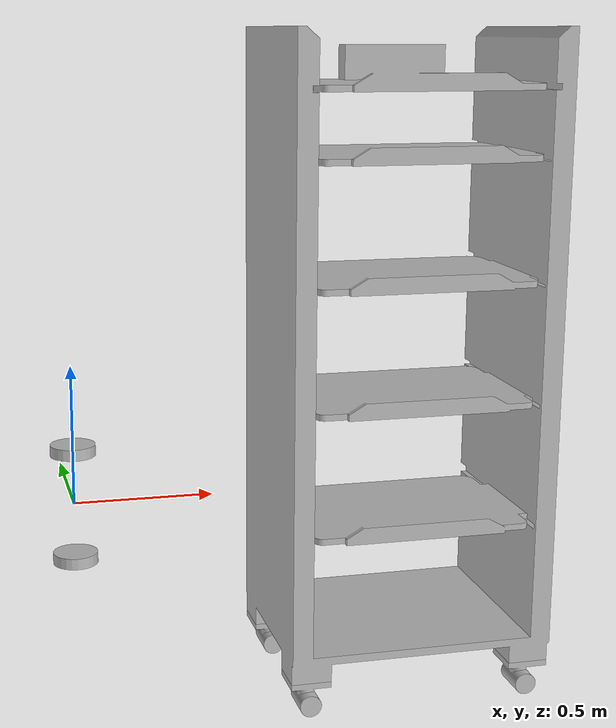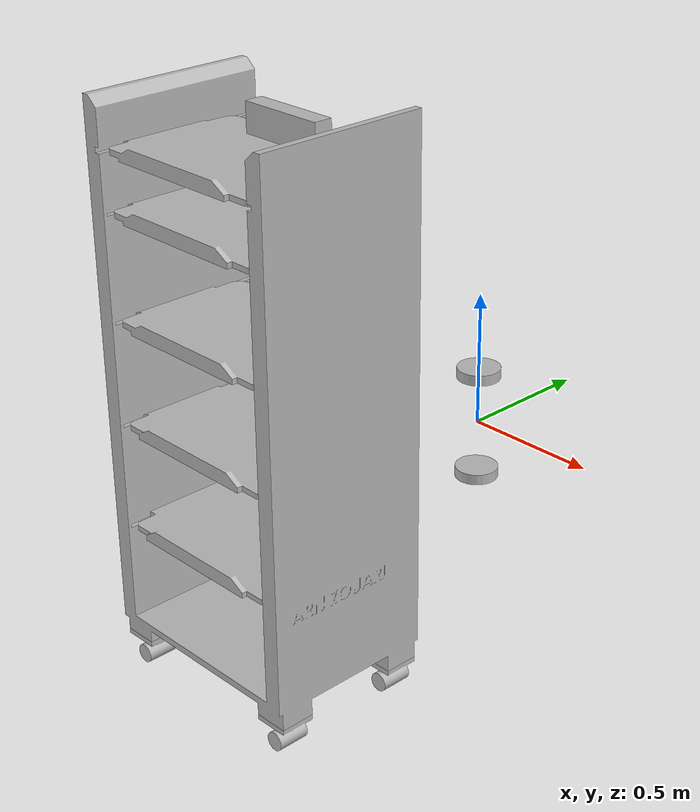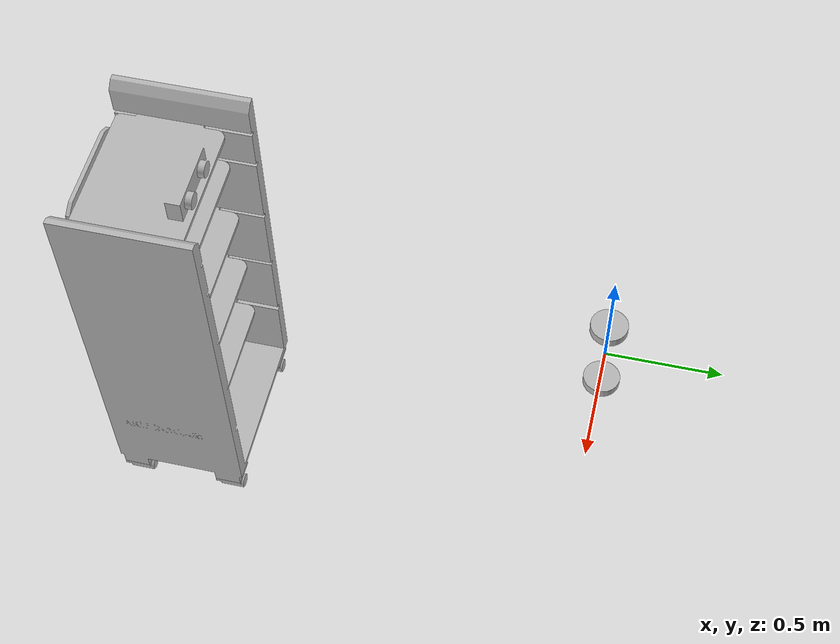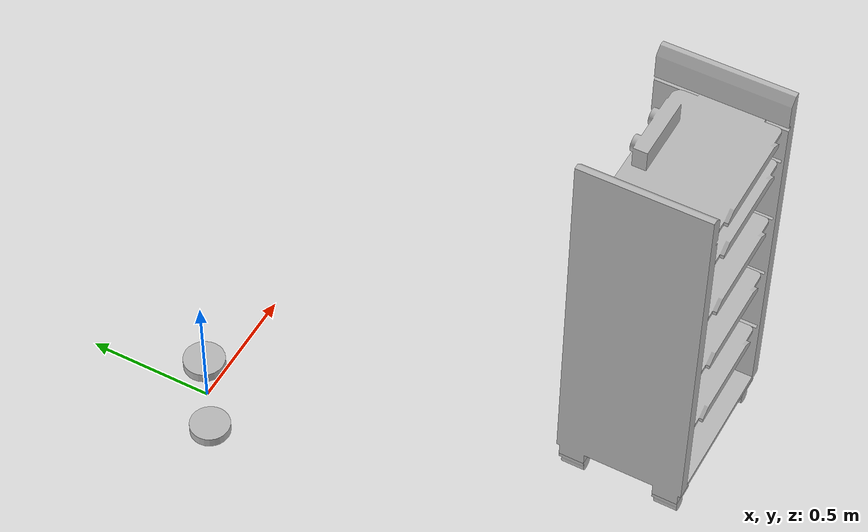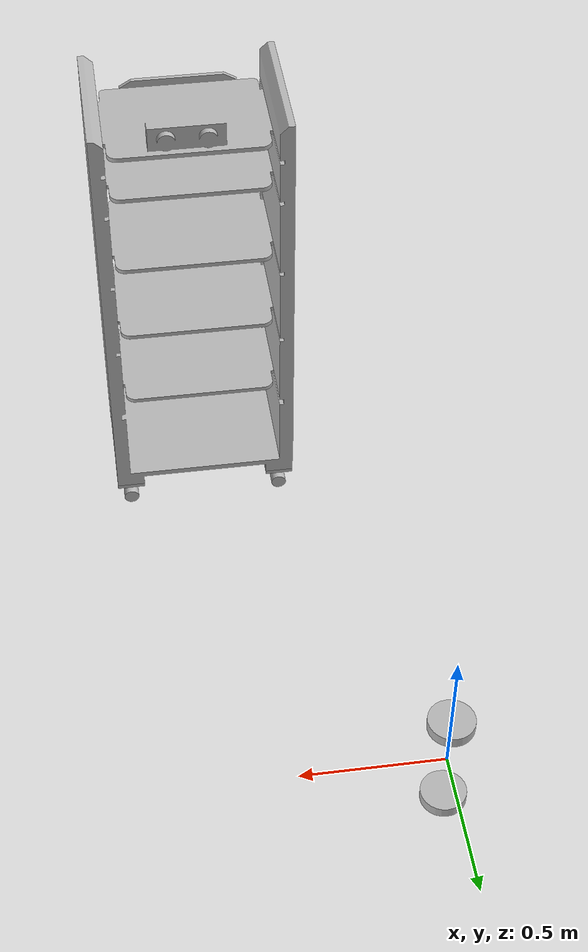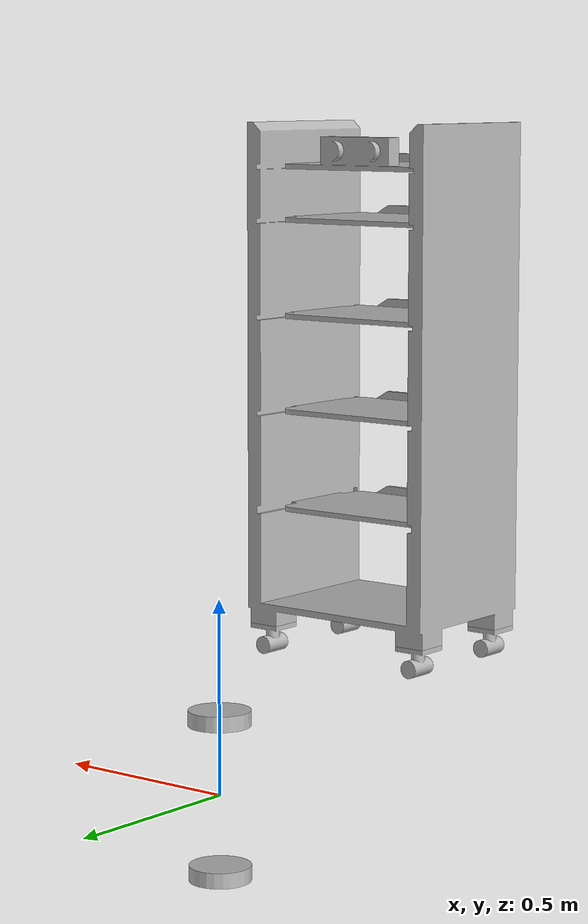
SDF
<?xml version="1.0"?>
<sdf version="1.9">
  <model name="conseption_mec">

    <static>false</static>
    <pose>0 0 0 1.5708 0 0</pose>

    <link name="link">

      <visual name="piece1">
        <geometry>
          <mesh>
            <uri>meshes/robo_cstam - Pièce1-1.STL</uri>
            <scale>0.001 0.001 0.001</scale>
          </mesh>
        </geometry>
      </visual>

      <visual name="piece3_1">
        <geometry>
          <mesh>
            <uri>meshes/robo_cstam - Pièce3-1.STL</uri>
            <scale>0.001 0.001 0.001</scale>
          </mesh>
        </geometry>
      </visual>

      <visual name="piece3_2">
        <geometry>
          <mesh>
            <uri>meshes/robo_cstam - Pièce3-2.STL</uri>
            <scale>0.001 0.001 0.001</scale>
          </mesh>
        </geometry>
      </visual>

      <visual name="piece3_3">
        <geometry>
          <mesh>
            <uri>meshes/robo_cstam - Pièce3-3.STL</uri>
            <scale>0.001 0.001 0.001</scale>
          </mesh>
        </geometry>
      </visual>

      <visual name="piece3_4">
        <geometry>
          <mesh>
            <uri>meshes/robo_cstam - Pièce3-4.STL</uri>
            <scale>0.001 0.001 0.001</scale>
          </mesh>
        </geometry>
      </visual>

      <visual name="etagere_1">
        <geometry>
          <mesh>
            <uri>meshes/robo_cstam - etagere - Copie-1.STL</uri>
            <scale>0.001 0.001 0.001</scale>
          </mesh>
        </geometry>
      </visual>

      <visual name="etagere_2">
        <geometry>
          <mesh>
            <uri>meshes/robo_cstam - etagere-1.STL</uri>
            <scale>0.001 0.001 0.001</scale>
          </mesh>
        </geometry>
      </visual>

      <visual name="etagere_3">
        <geometry>
          <mesh>
            <uri>meshes/robo_cstam - etagere-2.STL</uri>
            <scale>0.001 0.001 0.001</scale>
          </mesh>
        </geometry>
      </visual>

      <visual name="etagere_4">
        <geometry>
          <mesh>
            <uri>meshes/robo_cstam - etagere-3.STL</uri>
            <scale>0.001 0.001 0.001</scale>
          </mesh>
        </geometry>
      </visual>

      <visual name="etagere_5">
        <geometry>
          <mesh>
            <uri>meshes/robo_cstam - etagere-4.STL</uri>
            <scale>0.001 0.001 0.001</scale>
          </mesh>
        </geometry>
      </visual>

      <collision name="chassis_collision">
        <geometry><box><size>0.5 0.4 0.3</size></box></geometry>
      </collision>

      <inertial>
        <mass>5.0</mass>
        <inertia>
          <ixx>0.05</ixx><iyy>0.06</iyy><izz>0.04</izz>
          <ixy>0</ixy><ixz>0</ixz><iyz>0</iyz>
        </inertia>
      </inertial>

      <sensor name="lidar" type="gpu_lidar">
        <pose>0 0 0.25 0 0 0</pose>
        <topic>scan</topic>
        <update_rate>10</update_rate>
        <lidar>
          <scan>
            <horizontal>
              <samples>360</samples>
              <resolution>1</resolution>
              <min_angle>-3.14159</min_angle>
              <max_angle>3.14159</max_angle>
            </horizontal>
          </scan>
          <range>
            <min>0.12</min>
            <max>12.0</max>
            <resolution>0.01</resolution>
          </range>
        </lidar>
        <always_on>true</always_on>
        <visualize>true</visualize>
      </sensor>

    </link>

    <link name="left_wheel">
      <pose>0 0.2 0 1.5708 0 0</pose>
      <inertial>
        <mass>0.3</mass>
        <inertia>
          <ixx>0.001</ixx><iyy>0.001</iyy><izz>0.001</izz>
          <ixy>0</ixy><ixz>0</ixz><iyz>0</iyz>
        </inertia>
      </inertial>
      <collision name="left_wheel_collision">
        <geometry><cylinder><radius>0.08</radius><length>0.04</length></cylinder></geometry>
      </collision>
      <visual name="left_wheel_visual">
        <geometry><cylinder><radius>0.08</radius><length>0.04</length></cylinder></geometry>
      </visual>
    </link>

    <link name="right_wheel">
      <pose>0 -0.2 0 1.5708 0 0</pose>
      <inertial>
        <mass>0.3</mass>
        <inertia>
          <ixx>0.001</ixx><iyy>0.001</iyy><izz>0.001</izz>
          <ixy>0</ixy><ixz>0</ixz><iyz>0</iyz>
        </inertia>
      </inertial>
      <collision name="right_wheel_collision">
        <geometry><cylinder><radius>0.08</radius><length>0.04</length></cylinder></geometry>
      </collision>
      <visual name="right_wheel_visual">
        <geometry><cylinder><radius>0.08</radius><length>0.04</length></cylinder></geometry>
      </visual>
    </link>

    <joint name="left_wheel_joint" type="revolute">
      <parent>link</parent>
      <child>left_wheel</child>
      <axis>
        <xyz>0 0 1</xyz>
        <limit><effort>1000</effort><velocity>1000</velocity></limit>
      </axis>
    </joint>

    <joint name="right_wheel_joint" type="revolute">
      <parent>link</parent>
      <child>right_wheel</child>
      <axis>
        <xyz>0 0 1</xyz>
        <limit><effort>1000</effort><velocity>1000</velocity></limit>
      </axis>
    </joint>

    <plugin filename="gz-sim-diff-drive-system" name="gz::sim::systems::DiffDrive">
      <left_joint>left_wheel_joint</left_joint>
      <right_joint>right_wheel_joint</right_joint>
      <wheel_separation>0.4</wheel_separation>
      <wheel_radius>0.08</wheel_radius>
      <topic>cmd_vel</topic>
      <odom_topic>odom</odom_topic>
      <frame_id>odom</frame_id>
      <child_frame_id>link</child_frame_id>
    </plugin>

  </model>
</sdf>
